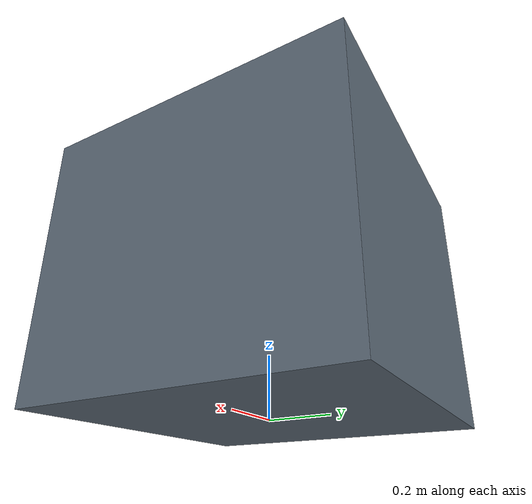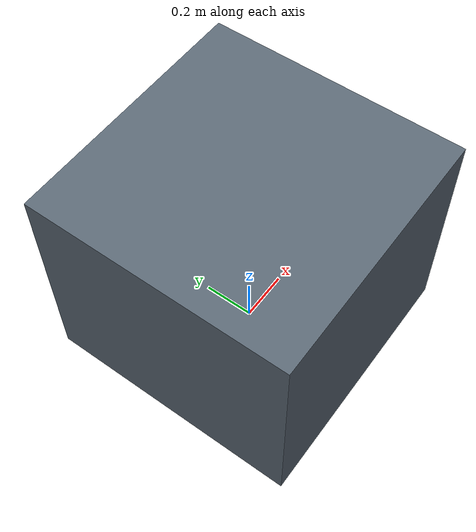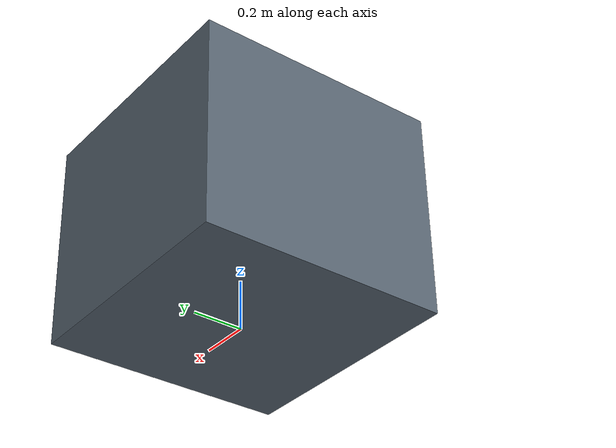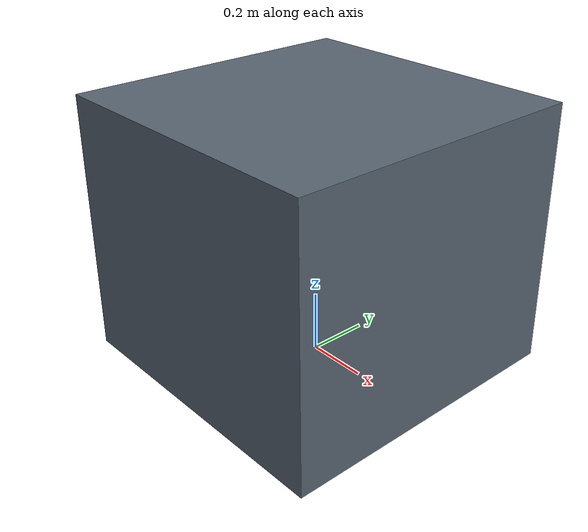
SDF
<?xml version="1.0"?>
<sdf version="1.6">
  <!-- Pickup platform for suitcase spawning.
       Link origin at bottom-center on ground; geometry centered at z=height/2.
       Static model: suitcases rest on the collision surface via gravity. -->
  <model name="pickup_platform">
    <static>true</static>
    <link name="platform_link">
      <visual name="visual">
        <pose>0 0 0.43 0 0 0</pose>
        <geometry>
          <box>
            <size>1.0 1.0 0.86</size>
          </box>
        </geometry>
        <material>
          <ambient>0.25 0.30 0.35 1</ambient>
          <diffuse>0.35 0.40 0.45 1</diffuse>
        </material>
      </visual>
      <collision name="collision">
        <pose>0 0 0.43 0 0 0</pose>
        <geometry>
          <box>
            <size>1.0 1.0 0.86</size>
          </box>
        </geometry>
        <surface>
          <friction>
            <ode><mu>0.8</mu><mu2>0.8</mu2></ode>
          </friction>
        </surface>
      </collision>
    </link>
  </model>
</sdf>
